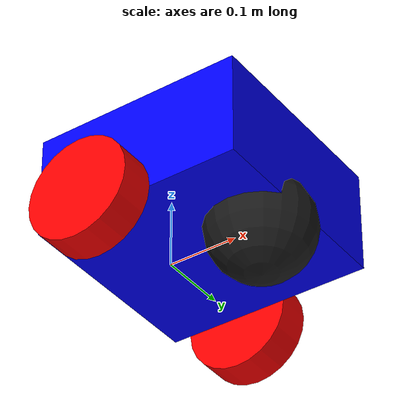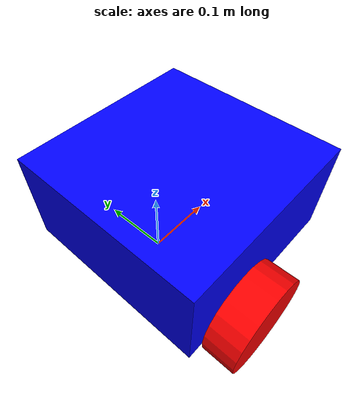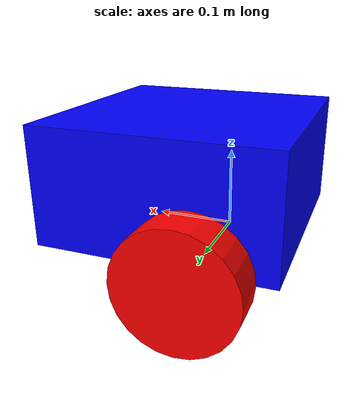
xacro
<?xml version="1.0"?>
<robot xmlns:xacro="http://www.ros.org/wiki/xacro"  name="robot">

<xacro:include filename="inertial_macros.xacro"/>
    <material name="black">
        <color rgba="0.1 0.1 0.1 1"/>
    </material>
    <material name="white">
        <color rgba="0.9 0.9 0.9 1"/>
    </material>
    <material name="red">
        <color rgba="1 0 0 1"/>
    </material>
    <material name="green">
        <color rgba="0 1 0 1"/>
    </material>
    <material name="blue">
        <color rgba="0 0 1 1"/>
    </material>
    <material name="yellow">
        <color rgba="1 1 0 1"/>
    </material>
    <material name="orange">
        <color rgba="1 0.5 0 1"/>
    </material>
    <!-- BASE LINK   -->
    <link name="base_link">
    </link>
    <joint name="chassis_joint" type="fixed">
        <parent link="base_link"/>
        <child link="chassis"/>
        <origin xyz="-0.1 0 0"/>
    </joint>

    <!-- CHASIS LINK  -->
    <link name="chassis">
        <visual>
            <origin xyz="0.15 0 0.075"/>
            <geometry>
                <box size="0.3 0.3 0.15"/>
            </geometry>
            <material name="blue"/>
        </visual>
        <collision>
            <origin xyz="0.15 0 0.075"/>
            <geometry>
                <box size="0.3 0.3 0.15"/>
            </geometry>
        </collision>
        <xacro:inertial_box mass="0.5" x="0.3" y="0.3" z="0.15">
            <origin xyz="0.15 0 0.075" rpy= "0 0 0"/>
        </xacro:inertial_box>
    </link>

    <!-- LEFT WHEEL LINK -->
    <joint name="left_wheel_joint" type="continuous">
        <parent link="base_link"/>
        <child link="left_wheel"/>
        <origin xyz="0 0.175 0" rpy="${-pi/2} 0 0"/>
        <axis xyz="0 0 1"/>
        <dynamics damping="0.1" friction="0.1"/>
    </joint>

    <link name="left_wheel">
        <visual>
            <origin xyz="0 0 0"/>
            <geometry>
                <cylinder radius="0.075" length="0.05"/>
            </geometry>
            <material name="red"/>
        </visual>
        <collision>
            <origin xyz="0 0 0"/>
            <geometry>
                <cylinder radius="0.075" length="0.05"/>
            </geometry>
        </collision>
        <xacro:inertial_cylinder mass="0.1" length="0.05" radius="0.075">
            <origin xyz="0 0 0" rpy="0 0 0"/>
        </xacro:inertial_cylinder>
    </link>

    <!-- RIGHT WHEEL LINK -->
    <joint name="right_wheel_joint" type="continuous">
        <parent link="base_link"/>
        <child link="right_wheel"/>
        <origin xyz="0 -0.175 0" rpy="${pi/2} 0 0"/>
        <axis xyz="0 0 -1"/>
        <dynamics damping="0.1" friction="0.1"/>
    </joint>
    <link name="right_wheel">
        <visual>
            <origin xyz="0 0 0"/>
            <geometry>
                <cylinder radius="0.075" length="0.05"/>
            </geometry>
            <material name="red"/>
        </visual>
        <collision>
            <origin xyz="0 0 0"/>
            <geometry>
                <cylinder radius="0.075" length="0.05"/>
            </geometry>
        </collision>
        <xacro:inertial_cylinder mass="0.1" length="0.05" radius="0.075">
            <origin xyz="0 0 0" rpy="0 0 0"/>
        </xacro:inertial_cylinder>
    </link>

    <!-- CASTER WHEEL LINK -->
    <joint name="caster_wheel_joint" type="continuous">
        <parent link="chassis"/>
        <child link="caster_wheel"/>
        <origin xyz="0.24 0 0"/>
    </joint>
    <link name="caster_wheel">
        <visual>
            <origin xyz="0 0 0"/>
            <geometry>
                <sphere radius="0.075" />
            </geometry>
            <material name="black"/>
        </visual>
        <collision>
            <geometry>
                <sphere radius="0.075" />
            </geometry>
        </collision>
        <xacro:inertial_sphere mass="0.1" radius="0.075">
            <origin xyz="0 0 0" rpy="0 0 0"/>
        </xacro:inertial_sphere>
    </link>
</robot>
